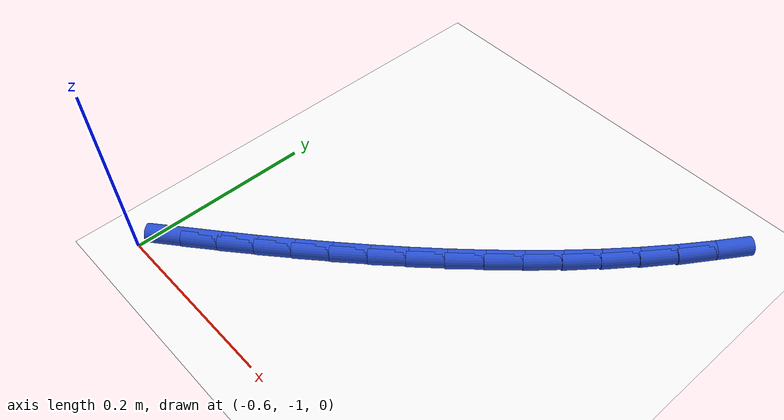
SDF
<sdf version="1.6">
 <world name="default">
  <model name="ground_plane">
   <static>1</static>
   <link name="link">
    <collision name="collision">
     <geometry><plane><normal>0 0 1</normal><size>100 100</size></plane></geometry>
     <surface><friction><ode><mu>100</mu><mu2>50</mu2></ode></friction></surface>
    </collision>
    <visual name="visual">
     <cast_shadows>0</cast_shadows>
     <geometry><plane><normal>0 0 1</normal><size>100 100</size></plane></geometry>
     <material>
      <script><uri>file://media/materials/scripts/gazebo.material</uri><name>Gazebo/WhiteGlow</name></script>
     </material>
    </visual>
   </link>
  </model>
  <model name="line">
   <link name="link_150">
    <pose>-0.5687066552180081 -0.960887520945568 0.01 0 1.57 0.6724259723871707</pose>
    <collision name="collision">
     <geometry><cylinder><radius>0.01</radius><length>0.08</length></cylinder></geometry>
    </collision>
    <visual name="visual">
     <material>
      <script><name>Gazebo/Blue</name><uri>file://media/materials/scripts/gazebo.material</uri></script>
     </material>
     <geometry><cylinder><radius>0.01</radius><length>0.08</length></cylinder></geometry>
    </visual>
   </link>
   <link name="link_151">
    <pose>-0.5389403781305518 -0.9371872997484538 0.01 0 1.57 0.6828797946882715</pose>
    <collision name="collision">
     <geometry><cylinder><radius>0.01</radius><length>0.08</length></cylinder></geometry>
    </collision>
    <visual name="visual">
     <material>
      <script><name>Gazebo/Blue</name><uri>file://media/materials/scripts/gazebo.material</uri></script>
     </material>
     <geometry><cylinder><radius>0.01</radius><length>0.08</length></cylinder></geometry>
    </visual>
   </link>
   <link name="link_152">
    <pose>-0.5092827687271251 -0.9130627475833822 0.01 0 1.57 0.6943732191149584</pose>
    <collision name="collision">
     <geometry><cylinder><radius>0.01</radius><length>0.08</length></cylinder></geometry>
    </collision>
    <visual name="visual">
     <material>
      <script><name>Gazebo/Blue</name><uri>file://media/materials/scripts/gazebo.material</uri></script>
     </material>
     <geometry><cylinder><radius>0.01</radius><length>0.08</length></cylinder></geometry>
    </visual>
   </link>
   <link name="link_153">
    <pose>-0.47978128421868127 -0.8884964203127834 0.01 0 1.57 0.7076401719041817</pose>
    <collision name="collision">
     <geometry><cylinder><radius>0.01</radius><length>0.08</length></cylinder></geometry>
    </collision>
    <visual name="visual">
     <material>
      <script><name>Gazebo/Blue</name><uri>file://media/materials/scripts/gazebo.material</uri></script>
     </material>
     <geometry><cylinder><radius>0.01</radius><length>0.08</length></cylinder></geometry>
    </visual>
   </link>
   <link name="link_154">
    <pose>-0.4505111758982245 -0.8634577826913814 0.01 0 1.57 0.72269723177166</pose>
    <collision name="collision">
     <geometry><cylinder><radius>0.01</radius><length>0.08</length></cylinder></geometry>
    </collision>
    <visual name="visual">
     <material>
      <script><name>Gazebo/Blue</name><uri>file://media/materials/scripts/gazebo.material</uri></script>
     </material>
     <geometry><cylinder><radius>0.01</radius><length>0.08</length></cylinder></geometry>
    </visual>
   </link>
   <link name="link_155">
    <pose>-0.42154769505876033 -0.8379162994739011 0.01 0 1.57 0.7395667588209671</pose>
    <collision name="collision">
     <geometry><cylinder><radius>0.01</radius><length>0.08</length></cylinder></geometry>
    </collision>
    <visual name="visual">
     <material>
      <script><name>Gazebo/Blue</name><uri>file://media/materials/scripts/gazebo.material</uri></script>
     </material>
     <geometry><cylinder><radius>0.01</radius><length>0.08</length></cylinder></geometry>
    </visual>
   </link>
   <link name="link_156">
    <pose>-0.3929660929932927 -0.8118414354150663 0.01 0 1.57 0.7582754585729621</pose>
    <collision name="collision">
     <geometry><cylinder><radius>0.01</radius><length>0.08</length></cylinder></geometry>
    </collision>
    <visual name="visual">
     <material>
      <script><name>Gazebo/Blue</name><uri>file://media/materials/scripts/gazebo.material</uri></script>
     </material>
     <geometry><cylinder><radius>0.01</radius><length>0.08</length></cylinder></geometry>
    </visual>
   </link>
   <link name="link_157">
    <pose>-0.36484162099482625 -0.7852026552696014 0.01 0 1.57 0.7788527565956943</pose>
    <collision name="collision">
     <geometry><cylinder><radius>0.01</radius><length>0.08</length></cylinder></geometry>
    </collision>
    <visual name="visual">
     <material>
      <script><name>Gazebo/Blue</name><uri>file://media/materials/scripts/gazebo.material</uri></script>
     </material>
     <geometry><cylinder><radius>0.01</radius><length>0.08</length></cylinder></geometry>
    </visual>
   </link>
   <link name="link_158">
    <pose>-0.3372495303563651 -0.7579694237922302 0.01 0 1.57 0.8013289350865255</pose>
    <collision name="collision">
     <geometry><cylinder><radius>0.01</radius><length>0.08</length></cylinder></geometry>
    </collision>
    <visual name="visual">
     <material>
      <script><name>Gazebo/Blue</name><uri>file://media/materials/scripts/gazebo.material</uri></script>
     </material>
     <geometry><cylinder><radius>0.01</radius><length>0.08</length></cylinder></geometry>
    </visual>
   </link>
   <link name="link_159">
    <pose>-0.31026507237091355 -0.7301112057376768 0.01 0 1.57 0.8257329876167786</pose>
    <collision name="collision">
     <geometry><cylinder><radius>0.01</radius><length>0.08</length></cylinder></geometry>
    </collision>
    <visual name="visual">
     <material>
      <script><name>Gazebo/Blue</name><uri>file://media/materials/scripts/gazebo.material</uri></script>
     </material>
     <geometry><cylinder><radius>0.01</radius><length>0.08</length></cylinder></geometry>
    </visual>
   </link>
   <link name="link_160">
    <pose>-0.2839634983314769 -0.7015974658606662 0.01 0 1.57 0.8520901581785394</pose>
    <collision name="collision">
     <geometry><cylinder><radius>0.01</radius><length>0.08</length></cylinder></geometry>
    </collision>
    <visual name="visual">
     <material>
      <script><name>Gazebo/Blue</name><uri>file://media/materials/scripts/gazebo.material</uri></script>
     </material>
     <geometry><cylinder><radius>0.01</radius><length>0.08</length></cylinder></geometry>
    </visual>
   </link>
   <link name="link_161">
    <pose>-0.2584200595310593 -0.6723976689159221 0.01 0 1.57 0.8804191473437905</pose>
    <collision name="collision">
     <geometry><cylinder><radius>0.01</radius><length>0.08</length></cylinder></geometry>
    </collision>
    <visual name="visual">
     <material>
      <script><name>Gazebo/Blue</name><uri>file://media/materials/scripts/gazebo.material</uri></script>
     </material>
     <geometry><cylinder><radius>0.01</radius><length>0.08</length></cylinder></geometry>
    </visual>
   </link>
   <link name="link_162">
    <pose>-0.23371000726125163 -0.642481279666502 0.01 0 1.57 0.9105692851590839</pose>
    <collision name="collision">
     <geometry><cylinder><radius>0.01</radius><length>0.08</length></cylinder></geometry>
    </collision>
    <visual name="visual">
     <material>
      <script><name>Gazebo/Blue</name><uri>file://media/materials/scripts/gazebo.material</uri></script>
     </material>
     <geometry><cylinder><radius>0.01</radius><length>0.08</length></cylinder></geometry>
    </visual>
   </link>
   <link name="link_163">
    <pose>-0.20990718562894095 -0.6118260589917178 0.01 0 1.57 0.9419498504382628</pose>
    <collision name="collision">
     <geometry><cylinder><radius>0.01</radius><length>0.08</length></cylinder></geometry>
    </collision>
    <visual name="visual">
     <material>
      <script><name>Gazebo/Blue</name><uri>file://media/materials/scripts/gazebo.material</uri></script>
     </material>
     <geometry><cylinder><radius>0.01</radius><length>0.08</length></cylinder></geometry>
    </visual>
   </link>
   <link name="link_164">
    <pose>-0.18707997824019942 -0.5804419603817355 0.01 0 1.57 0.9744769228024444</pose>
    <collision name="collision">
     <geometry><cylinder><radius>0.01</radius><length>0.08</length></cylinder></geometry>
    </collision>
    <visual name="visual">
     <material>
      <script><name>Gazebo/Blue</name><uri>file://media/materials/scripts/gazebo.material</uri></script>
     </material>
     <geometry><cylinder><radius>0.01</radius><length>0.08</length></cylinder></geometry>
    </visual>
   </link>
  </model>
 </world>
</sdf>
